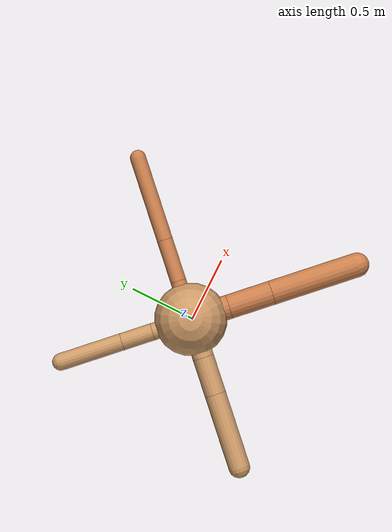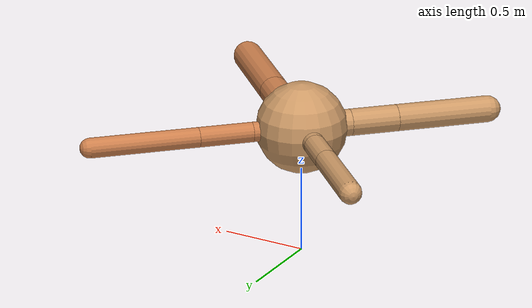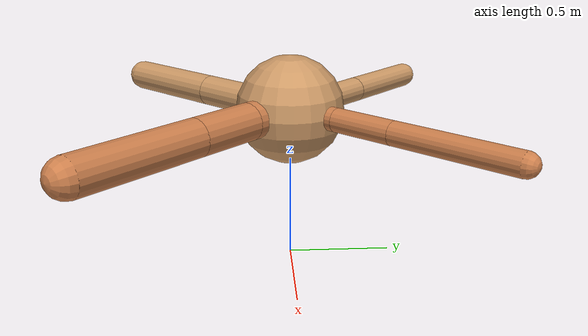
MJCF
<?xml version="1.0" ?>
<mujoco model="ant">

	<compiler angle="degree" coordinate="local" inertiafromgeom="true"/>

	<option integrator="RK4" timestep="0.01"/>

	<custom>

		<numeric data="0.0 0.0 0.55 1.0 0.0 0.0 0.0 0.0 1.0 0.0 -1.0 0.0 -1.0 0.0 1.0" name="init_qpos"/>

	</custom>

	<default>

		<joint armature="1" damping="1" limited="true"/>

		<geom conaffinity="0" condim="3" density="5.0" friction="1.5 0.1 0.1" margin="0.01" rgba="0.8 0.6 0.4 1"/>

	</default>

	<worldbody>

		<body name="torso" pos="0 0 0.75">

			<geom name="torso_geom" pos="0 0 0" size="0.25959684694070007" type="sphere"/>

			<!--joint armature="0" damping="0" limited="false" margin="0.01" name="root" pos="0 0 0" type="free"/-->

			<body name="front_left_leg" pos="0 0 0">

				<geom fromto="0 0 0 0.2 0.2 0" name="aux_1_geom" size="0.056247323235044874" type="capsule" rgba=".8 .5 .3 1"/>

				<body name="aux_1" pos="0.2 0.2 0">

					<joint axis="0 0 1" name="hip_1" pos="0.0 0.0 0.0" range="-40 40" type="hinge"/>

					<geom fromto="0 0 0 0.21572968047676847 0.21572968047676847 0" name="left_leg_geom" size="0.056247323235044874" type="capsule" rgba=".8 .5 .3 1"/>

					<body pos="0.21572968047676847 0.21572968047676847 0" name="front_left_foot">

						<joint axis="-1 1 0" name="ankle_1" pos="0.0 0.0 0.0" range="30 100" type="hinge"/>

						<geom fromto="0 0 0 0.43145936095353693 0.43145936095353693 0" name="left_ankle_geom" size="0.056247323235044874" type="capsule" rgba=".8 .5 .3 1"/>

					</body>

				</body>

			</body>

			<body name="front_right_leg" pos="0 0 0">

				<geom fromto="0 0 0 -0.2 0.2 0" name="aux_2_geom" size="0.06211599769660861" type="capsule"/>

				<body name="aux_2" pos="-0.2 0.2 0">

					<joint axis="0 0 1" name="hip_2" pos="0.0 0.0 0.0" range="-40 40" type="hinge"/>

					<geom fromto="0 0 0 -0.16043736815408388 0.16043736815408388 0" name="right_leg_geom" size="0.06211599769660861" type="capsule"/>

					<body pos="-0.16043736815408388 0.16043736815408388 0" name="front_right_foot">

						<joint axis="1 1 0" name="ankle_2" pos="0.0 0.0 0.0" range="-100 -30" type="hinge"/>

						<geom fromto="0 0 0 -0.32087473630816776 0.32087473630816776 0" name="right_ankle_geom" size="0.06211599769660861" type="capsule"/>

					</body>

				</body>

			</body>

			<body name="left_back_leg" pos="0 0 0">

				<geom fromto="0 0 0 -0.2 -0.2 0" name="aux_3_geom" size="0.07635821416012052" type="capsule"/>

				<body name="aux_3" pos="-0.2 -0.2 0">

					<joint axis="0 0 1" name="hip_3" pos="0.0 0.0 0.0" range="-40 40" type="hinge"/>

					<geom fromto="0 0 0 -0.1923791825925011 -0.1923791825925011 0" name="back_leg_geom" size="0.07635821416012052" type="capsule"/>

					<body pos="-0.1923791825925011 -0.1923791825925011 0" name="left_back_foot">

						<joint axis="-1 1 0" name="ankle_3" pos="0.0 0.0 0.0" range="-100 -30" type="hinge"/>

						<geom fromto="0 0 0 -0.3847583651850022 -0.3847583651850022 0" name="third_ankle_geom" size="0.07635821416012052" type="capsule"/>

					</body>

				</body>

			</body>

			<body name="right_back_leg" pos="0 0 0">

				<geom fromto="0 0 0 0.2 -0.2 0" name="aux_4_geom" size="0.08765189576209727" type="capsule" rgba=".8 .5 .3 1"/>

				<body name="aux_4" pos="0.2 -0.2 0">

					<joint axis="0 0 1" name="hip_4" pos="0.0 0.0 0.0" range="-40 40" type="hinge"/>

					<geom fromto="0 0 0 0.22383546660302323 -0.22383546660302323 0" name="rightback_leg_geom" size="0.08765189576209727" type="capsule" rgba=".8 .5 .3 1"/>

					<body pos="0.22383546660302323 -0.22383546660302323 0" name="right_back_foot">

						<joint axis="1 1 0" name="ankle_4" pos="0.0 0.0 0.0" range="30 100" type="hinge"/>

						<geom fromto="0 0 0 0.44767093320604645 -0.44767093320604645 0" name="fourth_ankle_geom" size="0.08765189576209727" type="capsule" rgba=".8 .5 .3 1"/>

					</body>

				</body>

			</body>

		</body>

	</worldbody>

	<actuator>

		<motor ctrllimited="true" ctrlrange="-1.0 1.0" joint="hip_4" gear="150"/>

		<motor ctrllimited="true" ctrlrange="-1.0 1.0" joint="ankle_4" gear="150"/>

		<motor ctrllimited="true" ctrlrange="-1.0 1.0" joint="hip_1" gear="150"/>

		<motor ctrllimited="true" ctrlrange="-1.0 1.0" joint="ankle_1" gear="150"/>

		<motor ctrllimited="true" ctrlrange="-1.0 1.0" joint="hip_2" gear="150"/>

		<motor ctrllimited="true" ctrlrange="-1.0 1.0" joint="ankle_2" gear="150"/>

		<motor ctrllimited="true" ctrlrange="-1.0 1.0" joint="hip_3" gear="150"/>

		<motor ctrllimited="true" ctrlrange="-1.0 1.0" joint="ankle_3" gear="150"/>

	</actuator>

</mujoco>
